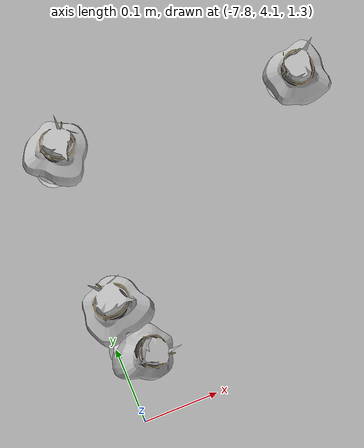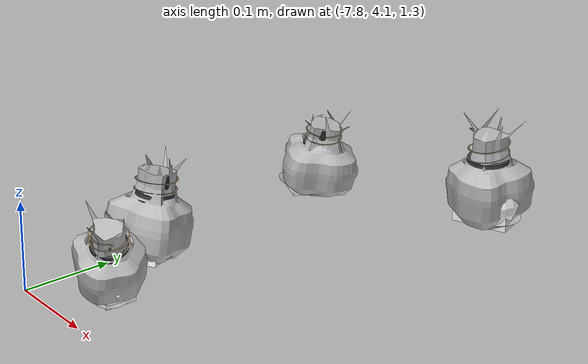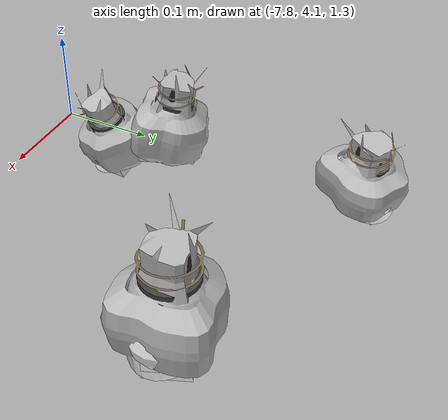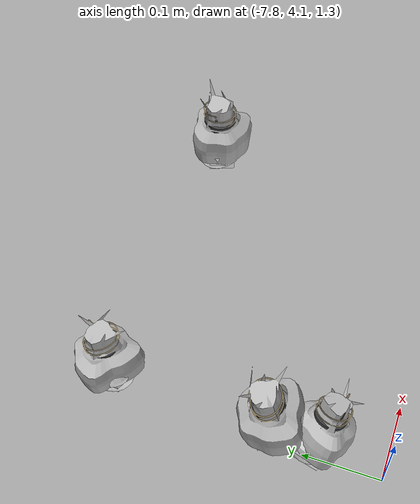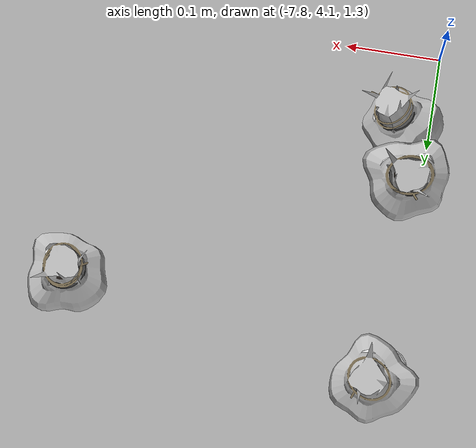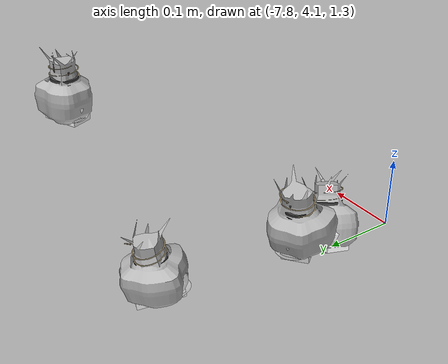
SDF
<sdf version="1.11">
 <world name="peach_orchard">
  <model name="ground">
   <static>true</static>
   <link name="link">
    <visual name="soil">
     <geometry><plane><normal>0 0 1</normal><size>32 22</size></plane></geometry>
     <material>
      <ambient>1 1 1 1</ambient>
      <diffuse>1 1 1 1</diffuse>
      <specular>0.1 0.1 0.1 1</specular>
      <pbr>
       <metal>
        <albedo_map>textures/soil_albedo.png</albedo_map>
        <normal_map type="tangent">textures/soil_normal.png</normal_map>
        <roughness>0.95</roughness>
        <metalness>0</metalness>
       </metal>
      </pbr>
     </material>
    </visual>
    <collision name="c_soil">
     <geometry><plane><normal>0 0 1</normal><size>32 22</size></plane></geometry>
    </collision>
   </link>
  </model>
  <model name="peach_tree_r0_t5_00">
   <pose>-7.4655 4.42191 1.41577 0 0.0112052 -3.11019</pose>
   <static>true</static>
   <link name="bag">
    <visual name="bag_mesh">
     <pose>0 0 0.0452349 0 0 -0</pose>
     <geometry>
      <mesh><uri>model://peach_sim/meshes/bagged_peach.glb</uri><scale>0.97178 1.10775 1.02807</scale></mesh>
     </geometry>
    </visual>
    <visual name="body">
     <pose>0 0 0.0272349 0 0 0</pose>
     <geometry><ellipsoid><radii>0.0364417 0.0288016 0.0294137</radii></ellipsoid></geometry>
     <material>
      <ambient>1 1 1 1</ambient>
      <diffuse>1 1 1 1</diffuse>
      <specular>0.1 0.1 0.1 1</specular>
      <pbr>
       <metal>
        <albedo_map>textures/paper_bag_albedo.png</albedo_map>
        <normal_map type="tangent">textures/paper_bag_normal.png</normal_map>
        <roughness>0.72</roughness>
        <metalness>0</metalness>
       </metal>
      </pbr>
     </material>
    </visual>
    <visual name="bottom_fold">
     <pose>0 0 0.012 0 0 0.35</pose>
     <geometry><box><size>0.0564847 0.0331218 0.022</size></box></geometry>
     <material>
      <ambient>1 1 1 1</ambient>
      <diffuse>1 1 1 1</diffuse>
      <specular>0.1 0.1 0.1 1</specular>
      <pbr>
       <metal>
        <albedo_map>textures/paper_bag_albedo.png</albedo_map>
        <normal_map type="tangent">textures/paper_bag_normal.png</normal_map>
        <roughness>0.8</roughness>
        <metalness>0</metalness>
       </metal>
      </pbr>
     </material>
    </visual>
    <visual name="fruit">
     <pose>0 0 0.0172712 0 0 0</pose>
     <geometry><sphere><radius>0.024202</radius></sphere></geometry>
     <material>
      <ambient>1 1 1 1</ambient>
      <diffuse>1 1 1 1</diffuse>
      <specular>0.1 0.1 0.1 1</specular>
      <pbr>
       <metal>
        <albedo_map>textures/fruit_skin_albedo.png</albedo_map>
        <normal_map type="tangent">textures/fruit_skin_normal.png</normal_map>
        <roughness>0.55</roughness>
        <metalness>0</metalness>
       </metal>
      </pbr>
     </material>
    </visual>
    <visual name="neck">
     <pose>0 0 0.0634699 0 0 0</pose>
     <geometry><cylinder><radius>0.013</radius><length>0.018</length></cylinder></geometry>
     <material>
      <ambient>1 1 1 1</ambient>
      <diffuse>1 1 1 1</diffuse>
      <specular>0.1 0.1 0.1 1</specular>
      <pbr>
       <metal>
        <albedo_map>textures/paper_bag_albedo.png</albedo_map>
        <normal_map type="tangent">textures/paper_bag_normal.png</normal_map>
        <roughness>0.75</roughness>
        <metalness>0</metalness>
       </metal>
      </pbr>
     </material>
    </visual>
    <visual name="gather">
     <pose>0 0 0.0444699 0 0 0</pose>
     <geometry><cylinder><radius>0.019</radius><length>0.02</length></cylinder></geometry>
     <material>
      <ambient>1 1 1 1</ambient>
      <diffuse>1 1 1 1</diffuse>
      <specular>0.1 0.1 0.1 1</specular>
      <pbr>
       <metal>
        <albedo_map>textures/paper_bag_albedo.png</albedo_map>
        <normal_map type="tangent">textures/paper_bag_normal.png</normal_map>
        <roughness>0.8</roughness>
        <metalness>0</metalness>
       </metal>
      </pbr>
     </material>
    </visual>
    <visual name="inner_paper">
     <pose>0 0 0.0684699 0 0 0</pose>
     <geometry><cylinder><radius>0.01</radius><length>0.008</length></cylinder></geometry>
     <material>
      <ambient>0.180392 0.14902 0.133333 1</ambient>
      <diffuse>0.180392 0.14902 0.133333 1</diffuse>
      <specular>0.1 0.1 0.1 1</specular>
     </material>
    </visual>
    <visual name="wire_0">
     <pose>0 0 0.0584699 0 0 0</pose>
     <geometry><cylinder><radius>0.0205</radius><length>0.0035</length></cylinder></geometry>
     <material>
      <ambient>0.25 0.25 0.25 1</ambient>
      <diffuse>0.25 0.25 0.25 1</diffuse>
      <specular>0.1 0.1 0.1 1</specular>
     </material>
    </visual>
    <visual name="wire_1">
     <pose>0 0 0.0654699 0 0 0</pose>
     <geometry><cylinder><radius>0.0205</radius><length>0.0035</length></cylinder></geometry>
     <material>
      <ambient>0.25 0.25 0.25 1</ambient>
      <diffuse>0.25 0.25 0.25 1</diffuse>
      <specular>0.1 0.1 0.1 1</specular>
     </material>
    </visual>
    <visual name="wire_tail">
     <pose>0.01 0 0.0664699 0 0.521618 0</pose>
     <geometry><cylinder><radius>0.0012</radius><length>0.026</length></cylinder></geometry>
     <material>
      <ambient>0.25 0.25 0.25 1</ambient>
      <diffuse>0.25 0.25 0.25 1</diffuse>
      <specular>0.1 0.1 0.1 1</specular>
     </material>
    </visual>
    <collision name="c_body">
     <pose>0 0 0.0272349 0 0 0</pose>
     <geometry><cylinder><radius>0.0364417</radius><length>0.0544699</length></cylinder></geometry>
    </collision>
   </link>
  </model>
  <model name="peach_tree_r0_t5_04">
   <pose>-7.78 4.45759 1.3188 0 0.154829 0.887322</pose>
   <static>true</static>
   <link name="bag">
    <visual name="bag_mesh">
     <pose>0 0 0.0394196 0 0 0</pose>
     <geometry>
      <mesh><uri>model://peach_sim/meshes/bagged_peach.glb</uri><scale>1.03785 1.19514 0.895901</scale></mesh>
     </geometry>
    </visual>
    <visual name="body">
     <pose>0 0 0.0214196 0 0 0</pose>
     <geometry><ellipsoid><radii>0.0389193 0.0310738 0.0231332</radii></ellipsoid></geometry>
     <material>
      <ambient>1 1 1 1</ambient>
      <diffuse>1 1 1 1</diffuse>
      <specular>0.1 0.1 0.1 1</specular>
      <pbr>
       <metal>
        <albedo_map>textures/paper_bag_albedo.png</albedo_map>
        <normal_map type="tangent">textures/paper_bag_normal.png</normal_map>
        <roughness>0.72</roughness>
        <metalness>0</metalness>
       </metal>
      </pbr>
     </material>
    </visual>
    <visual name="bottom_fold">
     <pose>0 0 0.012 0 0 0.35</pose>
     <geometry><box><size>0.0603249 0.0357348 0.022</size></box></geometry>
     <material>
      <ambient>1 1 1 1</ambient>
      <diffuse>1 1 1 1</diffuse>
      <specular>0.1 0.1 0.1 1</specular>
      <pbr>
       <metal>
        <albedo_map>textures/paper_bag_albedo.png</albedo_map>
        <normal_map type="tangent">textures/paper_bag_normal.png</normal_map>
        <roughness>0.8</roughness>
        <metalness>0</metalness>
       </metal>
      </pbr>
     </material>
    </visual>
    <visual name="fruit">
     <pose>0 0 0.0170292 0 0 0</pose>
     <geometry><sphere><radius>0.0239503</radius></sphere></geometry>
     <material>
      <ambient>1 1 1 1</ambient>
      <diffuse>1 1 1 1</diffuse>
      <specular>0.1 0.1 0.1 1</specular>
      <pbr>
       <metal>
        <albedo_map>textures/fruit_skin_albedo.png</albedo_map>
        <normal_map type="tangent">textures/fruit_skin_normal.png</normal_map>
        <roughness>0.55</roughness>
        <metalness>0</metalness>
       </metal>
      </pbr>
     </material>
    </visual>
    <visual name="neck">
     <pose>0 0 0.0518393 0 0 0</pose>
     <geometry><cylinder><radius>0.013</radius><length>0.018</length></cylinder></geometry>
     <material>
      <ambient>1 1 1 1</ambient>
      <diffuse>1 1 1 1</diffuse>
      <specular>0.1 0.1 0.1 1</specular>
      <pbr>
       <metal>
        <albedo_map>textures/paper_bag_albedo.png</albedo_map>
        <normal_map type="tangent">textures/paper_bag_normal.png</normal_map>
        <roughness>0.75</roughness>
        <metalness>0</metalness>
       </metal>
      </pbr>
     </material>
    </visual>
    <visual name="gather">
     <pose>0 0 0.0328393 0 0 0</pose>
     <geometry><cylinder><radius>0.019</radius><length>0.02</length></cylinder></geometry>
     <material>
      <ambient>1 1 1 1</ambient>
      <diffuse>1 1 1 1</diffuse>
      <specular>0.1 0.1 0.1 1</specular>
      <pbr>
       <metal>
        <albedo_map>textures/paper_bag_albedo.png</albedo_map>
        <normal_map type="tangent">textures/paper_bag_normal.png</normal_map>
        <roughness>0.8</roughness>
        <metalness>0</metalness>
       </metal>
      </pbr>
     </material>
    </visual>
    <visual name="inner_paper">
     <pose>0 0 0.0568393 0 0 0</pose>
     <geometry><cylinder><radius>0.01</radius><length>0.008</length></cylinder></geometry>
     <material>
      <ambient>0.180392 0.14902 0.133333 1</ambient>
      <diffuse>0.180392 0.14902 0.133333 1</diffuse>
      <specular>0.1 0.1 0.1 1</specular>
     </material>
    </visual>
    <visual name="wire_0">
     <pose>0 0 0.0468393 0 0 0</pose>
     <geometry><cylinder><radius>0.0205</radius><length>0.0035</length></cylinder></geometry>
     <material>
      <ambient>0.25 0.25 0.25 1</ambient>
      <diffuse>0.25 0.25 0.25 1</diffuse>
      <specular>0.1 0.1 0.1 1</specular>
     </material>
    </visual>
    <visual name="wire_1">
     <pose>0 0 0.0538393 0 0 0</pose>
     <geometry><cylinder><radius>0.0205</radius><length>0.0035</length></cylinder></geometry>
     <material>
      <ambient>0.25 0.25 0.25 1</ambient>
      <diffuse>0.25 0.25 0.25 1</diffuse>
      <specular>0.1 0.1 0.1 1</specular>
     </material>
    </visual>
    <visual name="wire_tail">
     <pose>0.01 0 0.0548393 0 0.521618 0</pose>
     <geometry><cylinder><radius>0.0012</radius><length>0.026</length></cylinder></geometry>
     <material>
      <ambient>0.25 0.25 0.25 1</ambient>
      <diffuse>0.25 0.25 0.25 1</diffuse>
      <specular>0.1 0.1 0.1 1</specular>
     </material>
    </visual>
    <collision name="c_body">
     <pose>0 0 0.0214196 0 0 0</pose>
     <geometry><cylinder><radius>0.0389193</radius><length>0.0428393</length></cylinder></geometry>
    </collision>
   </link>
  </model>
  <model name="peach_tree_r0_t5_05">
   <pose>-7.78 4.23794 1.30343 0 0.185573 1.82346</pose>
   <static>true</static>
   <link name="bag">
    <visual name="bag_mesh">
     <pose>0 0 0.047702 0 0 0</pose>
     <geometry>
      <mesh><uri>model://peach_sim/meshes/bagged_peach.glb</uri><scale>1.0356 1.27365 1.08414</scale></mesh>
     </geometry>
    </visual>
    <visual name="body">
     <pose>0 0 0.029702 0 0 0</pose>
     <geometry><ellipsoid><radii>0.038835 0.0331148 0.0320782</radii></ellipsoid></geometry>
     <material>
      <ambient>1 1 1 1</ambient>
      <diffuse>1 1 1 1</diffuse>
      <specular>0.1 0.1 0.1 1</specular>
      <pbr>
       <metal>
        <albedo_map>textures/paper_bag_albedo.png</albedo_map>
        <normal_map type="tangent">textures/paper_bag_normal.png</normal_map>
        <roughness>0.72</roughness>
        <metalness>0</metalness>
       </metal>
      </pbr>
     </material>
    </visual>
    <visual name="bottom_fold">
     <pose>0 0 0.012 0 0 0.35</pose>
     <geometry><box><size>0.0601942 0.0380821 0.022</size></box></geometry>
     <material>
      <ambient>1 1 1 1</ambient>
      <diffuse>1 1 1 1</diffuse>
      <specular>0.1 0.1 0.1 1</specular>
      <pbr>
       <metal>
        <albedo_map>textures/paper_bag_albedo.png</albedo_map>
        <normal_map type="tangent">textures/paper_bag_normal.png</normal_map>
        <roughness>0.8</roughness>
        <metalness>0</metalness>
       </metal>
      </pbr>
     </material>
    </visual>
    <visual name="fruit">
     <pose>0 0 0.0214799 0 0 0</pose>
     <geometry><sphere><radius>0.0285791</radius></sphere></geometry>
     <material>
      <ambient>1 1 1 1</ambient>
      <diffuse>1 1 1 1</diffuse>
      <specular>0.1 0.1 0.1 1</specular>
      <pbr>
       <metal>
        <albedo_map>textures/fruit_skin_albedo.png</albedo_map>
        <normal_map type="tangent">textures/fruit_skin_normal.png</normal_map>
        <roughness>0.55</roughness>
        <metalness>0</metalness>
       </metal>
      </pbr>
     </material>
    </visual>
    <visual name="neck">
     <pose>0 0 0.068404 0 0 0</pose>
     <geometry><cylinder><radius>0.013</radius><length>0.018</length></cylinder></geometry>
     <material>
      <ambient>1 1 1 1</ambient>
      <diffuse>1 1 1 1</diffuse>
      <specular>0.1 0.1 0.1 1</specular>
      <pbr>
       <metal>
        <albedo_map>textures/paper_bag_albedo.png</albedo_map>
        <normal_map type="tangent">textures/paper_bag_normal.png</normal_map>
        <roughness>0.75</roughness>
        <metalness>0</metalness>
       </metal>
      </pbr>
     </material>
    </visual>
    <visual name="gather">
     <pose>0 0 0.049404 0 0 0</pose>
     <geometry><cylinder><radius>0.019</radius><length>0.02</length></cylinder></geometry>
     <material>
      <ambient>1 1 1 1</ambient>
      <diffuse>1 1 1 1</diffuse>
      <specular>0.1 0.1 0.1 1</specular>
      <pbr>
       <metal>
        <albedo_map>textures/paper_bag_albedo.png</albedo_map>
        <normal_map type="tangent">textures/paper_bag_normal.png</normal_map>
        <roughness>0.8</roughness>
        <metalness>0</metalness>
       </metal>
      </pbr>
     </material>
    </visual>
    <visual name="inner_paper">
     <pose>0 0 0.073404 0 0 0</pose>
     <geometry><cylinder><radius>0.01</radius><length>0.008</length></cylinder></geometry>
     <material>
      <ambient>0.180392 0.14902 0.133333 1</ambient>
      <diffuse>0.180392 0.14902 0.133333 1</diffuse>
      <specular>0.1 0.1 0.1 1</specular>
     </material>
    </visual>
    <visual name="wire_0">
     <pose>0 0 0.063404 0 0 0</pose>
     <geometry><cylinder><radius>0.0205</radius><length>0.0035</length></cylinder></geometry>
     <material>
      <ambient>0.25 0.25 0.25 1</ambient>
      <diffuse>0.25 0.25 0.25 1</diffuse>
      <specular>0.1 0.1 0.1 1</specular>
     </material>
    </visual>
    <visual name="wire_1">
     <pose>0 0 0.070404 0 0 0</pose>
     <geometry><cylinder><radius>0.0205</radius><length>0.0035</length></cylinder></geometry>
     <material>
      <ambient>0.25 0.25 0.25 1</ambient>
      <diffuse>0.25 0.25 0.25 1</diffuse>
      <specular>0.1 0.1 0.1 1</specular>
     </material>
    </visual>
    <visual name="wire_tail">
     <pose>0.01 0 0.071404 0 0.521618 0</pose>
     <geometry><cylinder><radius>0.0012</radius><length>0.026</length></cylinder></geometry>
     <material>
      <ambient>0.25 0.25 0.25 1</ambient>
      <diffuse>0.25 0.25 0.25 1</diffuse>
      <specular>0.1 0.1 0.1 1</specular>
     </material>
    </visual>
    <collision name="c_body">
     <pose>0 0 0.029702 0 0 0</pose>
     <geometry><cylinder><radius>0.038835</radius><length>0.059404</length></cylinder></geometry>
    </collision>
   </link>
  </model>
  <model name="peach_tree_r0_t5_06">
   <pose>-7.78 4.18958 1.28233 0 0.352671 -0.535978</pose>
   <static>true</static>
   <link name="bag">
    <visual name="bag_mesh">
     <pose>0 0 0.045165 0 0 -0</pose>
     <geometry>
      <mesh><uri>model://peach_sim/meshes/bagged_peach.glb</uri><scale>0.97679 1.12343 1.02648</scale></mesh>
     </geometry>
    </visual>
    <visual name="body">
     <pose>0 0 0.027165 0 0 0</pose>
     <geometry><ellipsoid><radii>0.0366296 0.0292091 0.0293382</radii></ellipsoid></geometry>
     <material>
      <ambient>1 1 1 1</ambient>
      <diffuse>1 1 1 1</diffuse>
      <specular>0.1 0.1 0.1 1</specular>
      <pbr>
       <metal>
        <albedo_map>textures/paper_bag_albedo.png</albedo_map>
        <normal_map type="tangent">textures/paper_bag_normal.png</normal_map>
        <roughness>0.72</roughness>
        <metalness>0</metalness>
       </metal>
      </pbr>
     </material>
    </visual>
    <visual name="bottom_fold">
     <pose>0 0 0.012 0 0 0.35</pose>
     <geometry><box><size>0.0567759 0.0335905 0.022</size></box></geometry>
     <material>
      <ambient>1 1 1 1</ambient>
      <diffuse>1 1 1 1</diffuse>
      <specular>0.1 0.1 0.1 1</specular>
      <pbr>
       <metal>
        <albedo_map>textures/paper_bag_albedo.png</albedo_map>
        <normal_map type="tangent">textures/paper_bag_normal.png</normal_map>
        <roughness>0.8</roughness>
        <metalness>0</metalness>
       </metal>
      </pbr>
     </material>
    </visual>
    <visual name="fruit">
     <pose>0 0 0.018194 0 0 0</pose>
     <geometry><sphere><radius>0.0251618</radius></sphere></geometry>
     <material>
      <ambient>1 1 1 1</ambient>
      <diffuse>1 1 1 1</diffuse>
      <specular>0.1 0.1 0.1 1</specular>
      <pbr>
       <metal>
        <albedo_map>textures/fruit_skin_albedo.png</albedo_map>
        <normal_map type="tangent">textures/fruit_skin_normal.png</normal_map>
        <roughness>0.55</roughness>
        <metalness>0</metalness>
       </metal>
      </pbr>
     </material>
    </visual>
    <visual name="neck">
     <pose>0 0 0.06333 0 0 0</pose>
     <geometry><cylinder><radius>0.013</radius><length>0.018</length></cylinder></geometry>
     <material>
      <ambient>1 1 1 1</ambient>
      <diffuse>1 1 1 1</diffuse>
      <specular>0.1 0.1 0.1 1</specular>
      <pbr>
       <metal>
        <albedo_map>textures/paper_bag_albedo.png</albedo_map>
        <normal_map type="tangent">textures/paper_bag_normal.png</normal_map>
        <roughness>0.75</roughness>
        <metalness>0</metalness>
       </metal>
      </pbr>
     </material>
    </visual>
    <visual name="gather">
     <pose>0 0 0.04433 0 0 0</pose>
     <geometry><cylinder><radius>0.019</radius><length>0.02</length></cylinder></geometry>
     <material>
      <ambient>1 1 1 1</ambient>
      <diffuse>1 1 1 1</diffuse>
      <specular>0.1 0.1 0.1 1</specular>
      <pbr>
       <metal>
        <albedo_map>textures/paper_bag_albedo.png</albedo_map>
        <normal_map type="tangent">textures/paper_bag_normal.png</normal_map>
        <roughness>0.8</roughness>
        <metalness>0</metalness>
       </metal>
      </pbr>
     </material>
    </visual>
    <visual name="inner_paper">
     <pose>0 0 0.06833 0 0 0</pose>
     <geometry><cylinder><radius>0.01</radius><length>0.008</length></cylinder></geometry>
     <material>
      <ambient>0.180392 0.14902 0.133333 1</ambient>
      <diffuse>0.180392 0.14902 0.133333 1</diffuse>
      <specular>0.1 0.1 0.1 1</specular>
     </material>
    </visual>
    <visual name="wire_0">
     <pose>0 0 0.05833 0 0 0</pose>
     <geometry><cylinder><radius>0.0205</radius><length>0.0035</length></cylinder></geometry>
     <material>
      <ambient>0.25 0.25 0.25 1</ambient>
      <diffuse>0.25 0.25 0.25 1</diffuse>
      <specular>0.1 0.1 0.1 1</specular>
     </material>
    </visual>
    <visual name="wire_1">
     <pose>0 0 0.06533 0 0 0</pose>
     <geometry><cylinder><radius>0.0205</radius><length>0.0035</length></cylinder></geometry>
     <material>
      <ambient>0.25 0.25 0.25 1</ambient>
      <diffuse>0.25 0.25 0.25 1</diffuse>
      <specular>0.1 0.1 0.1 1</specular>
     </material>
    </visual>
    <visual name="wire_tail">
     <pose>0.01 0 0.06633 0 0.521618 0</pose>
     <geometry><cylinder><radius>0.0012</radius><length>0.026</length></cylinder></geometry>
     <material>
      <ambient>0.25 0.25 0.25 1</ambient>
      <diffuse>0.25 0.25 0.25 1</diffuse>
      <specular>0.1 0.1 0.1 1</specular>
     </material>
    </visual>
    <collision name="c_body">
     <pose>0 0 0.027165 0 0 0</pose>
     <geometry><cylinder><radius>0.0366296</radius><length>0.05433</length></cylinder></geometry>
    </collision>
   </link>
  </model>
 </world>
</sdf>
